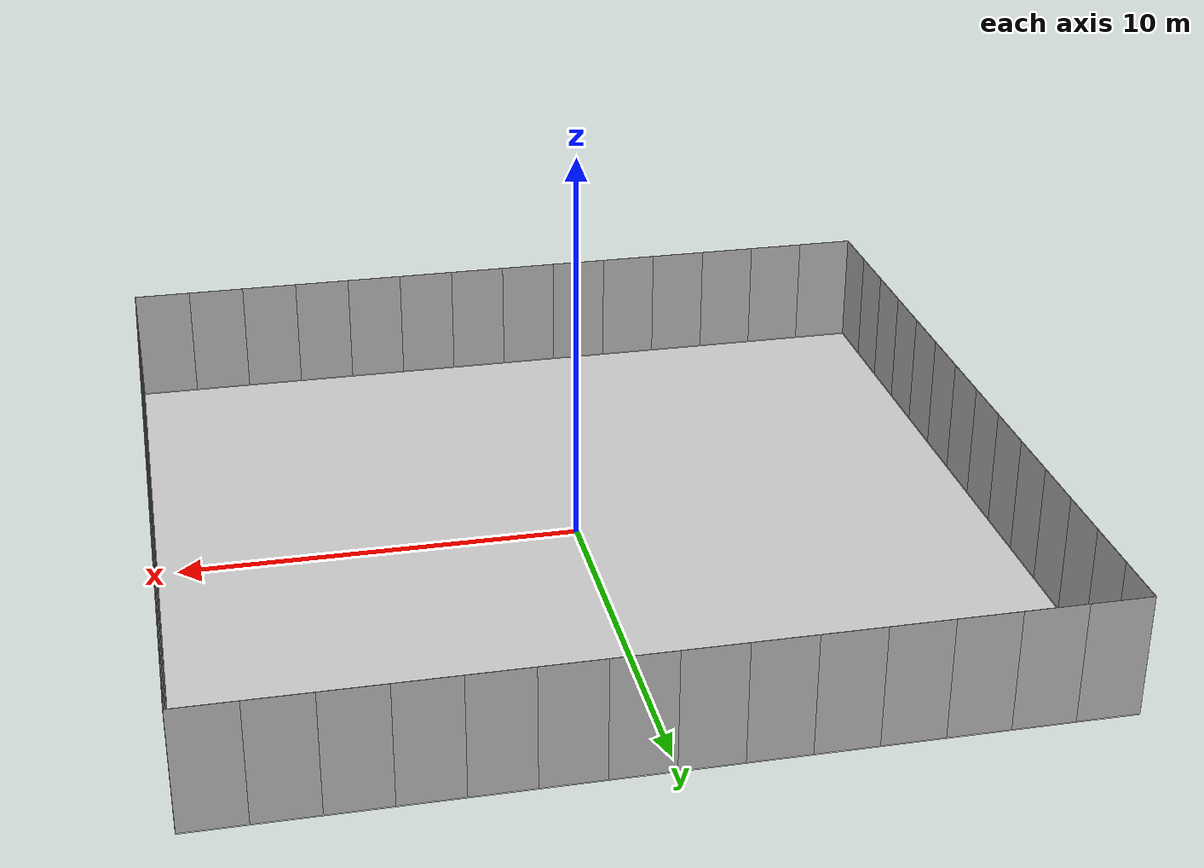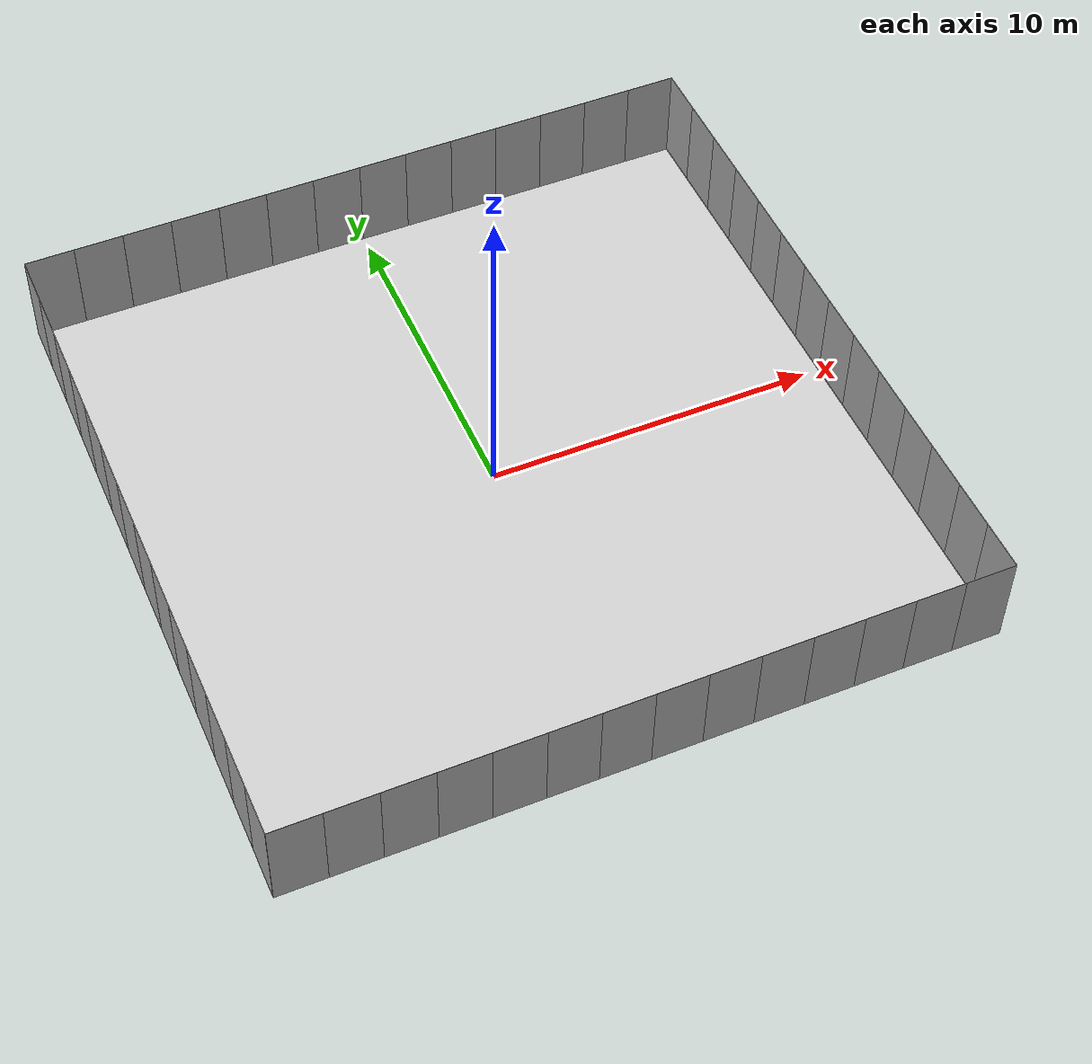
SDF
<sdf version="1.6">
 <world name="default">
  <physics type="ode">
   <real_time_update_rate>500.0</real_time_update_rate>
   <max_step_size>0.002</max_step_size>
   <real_time_factor>1</real_time_factor>
   <ode>
    <solver>
     <type>quick</type>
     <iters>300</iters>
     <precon_iters>0</precon_iters>
     <sor>1.400000</sor>
     <use_dynamic_moi_rescaling>1</use_dynamic_moi_rescaling>
    </solver>
    <constraints>
     <cfm>0.000000</cfm>
     <erp>0.800000</erp>
     <contact_max_correcting_vel>2000.000000</contact_max_correcting_vel>
     <contact_surface_layer>0.01000</contact_surface_layer>
    </constraints>
   </ode>
  </physics>
  <scene>
   <ambient>0.8 0.8 0.8 1.0</ambient>
   <background>0.66 0.77 0.84 1.0</background>
   <grid>0</grid>
   <origin_visual>0</origin_visual>
  </scene>
  <light name="directional_light" type="directional">
   <pose>0.0 0.0 -100.0 0 0 0</pose>
   <diffuse>0.5 0.5 0.5 1</diffuse>
   <specular>0.1 0.1 0.1 1</specular>
   <direction>0.1 0.1 -0.9</direction>
   <attenuation>
    <range>20</range>
    <constant>0.5</constant>
    <linear>0.01</linear>
    <quadratic>0.001</quadratic>
   </attenuation>
   <cast_shadows>0</cast_shadows>
  </light>
  <model name="floor">
   <static>true</static>
   <link name="link">
    <visual name="visual">
     <geometry><plane><normal>0 0 1</normal><size>21 21</size></plane></geometry>
     <material>
      <script>
       <uri>file://media/materials/scripts/</uri>
       <uri>file://media/materials/textures/</uri>
       <name>ServiceSim/Hallway</name>
      </script>
     </material>
    </visual>
    <collision name="collision">
     <geometry><plane><normal>0 0 1</normal><size>21 21</size></plane></geometry>
     <surface><friction><ode><mu>1</mu><mu2>1</mu2></ode></friction></surface>
    </collision>
   </link>
  </model>
  <model name="walls">
   <static>true</static>
   <link name="link">
    <visual name="visual_1">
     <pose>9.75
          -10.5
          1.5
          0.0
          0.0
          0</pose>
     <geometry><box><size>1.5
              0.01
              3.0</size></box></geometry>
     <material>
      <script>
       <uri>file://media/materials/scripts/</uri>
       <uri>file://media/materials/textures/</uri>
       <name>ServiceSim/PlainWall</name>
      </script>
     </material>
    </visual>
    <collision name="collision_1">
     <pose>9.75
          -10.5
          1.5
          0.0
          0.0
          0</pose>
     <geometry><box><size>1.5
              0.01
              3.0</size></box></geometry>
    </collision>
    <visual name="visual_1_1">
     <pose>8.25
          -10.5
          1.5
          0.0
          0.0
          0</pose>
     <geometry><box><size>1.5
              0.01
              3.0</size></box></geometry>
     <material>
      <script>
       <uri>file://media/materials/scripts/</uri>
       <uri>file://media/materials/textures/</uri>
       <name>ServiceSim/PlainWall</name>
      </script>
     </material>
    </visual>
    <collision name="collision_1_1">
     <pose>8.25
          -10.5
          1.5
          0.0
          0.0
          0</pose>
     <geometry><box><size>1.5
              0.01
              3.0</size></box></geometry>
    </collision>
    <visual name="visual_1_2">
     <pose>6.75
          -10.5
          1.5
          0.0
          0.0
          0</pose>
     <geometry><box><size>1.5
              0.01
              3.0</size></box></geometry>
     <material>
      <script>
       <uri>file://media/materials/scripts/</uri>
       <uri>file://media/materials/textures/</uri>
       <name>ServiceSim/PlainWall</name>
      </script>
     </material>
    </visual>
    <collision name="collision_1_2">
     <pose>6.75
          -10.5
          1.5
          0.0
          0.0
          0</pose>
     <geometry><box><size>1.5
              0.01
              3.0</size></box></geometry>
    </collision>
    <visual name="visual_1_3">
     <pose>5.25
          -10.5
          1.5
          0.0
          0.0
          0</pose>
     <geometry><box><size>1.5
              0.01
              3.0</size></box></geometry>
     <material>
      <script>
       <uri>file://media/materials/scripts/</uri>
       <uri>file://media/materials/textures/</uri>
       <name>ServiceSim/PlainWall</name>
      </script>
     </material>
    </visual>
    <collision name="collision_1_3">
     <pose>5.25
          -10.5
          1.5
          0.0
          0.0
          0</pose>
     <geometry><box><size>1.5
              0.01
              3.0</size></box></geometry>
    </collision>
    <visual name="visual_1_4">
     <pose>3.75
          -10.5
          1.5
          0.0
          0.0
          0</pose>
     <geometry><box><size>1.5
              0.01
              3.0</size></box></geometry>
     <material>
      <script>
       <uri>file://media/materials/scripts/</uri>
       <uri>file://media/materials/textures/</uri>
       <name>ServiceSim/PlainWall</name>
      </script>
     </material>
    </visual>
    <collision name="collision_1_4">
     <pose>3.75
          -10.5
          1.5
          0.0
          0.0
          0</pose>
     <geometry><box><size>1.5
              0.01
              3.0</size></box></geometry>
    </collision>
    <visual name="visual_1_5">
     <pose>2.25
          -10.5
          1.5
          0.0
          0.0
          0</pose>
     <geometry><box><size>1.5
              0.01
              3.0</size></box></geometry>
     <material>
      <script>
       <uri>file://media/materials/scripts/</uri>
       <uri>file://media/materials/textures/</uri>
       <name>ServiceSim/PlainWall</name>
      </script>
     </material>
    </visual>
    <collision name="collision_1_5">
     <pose>2.25
          -10.5
          1.5
          0.0
          0.0
          0</pose>
     <geometry><box><size>1.5
              0.01
              3.0</size></box></geometry>
    </collision>
    <visual name="visual_1_6">
     <pose>0.75
          -10.5
          1.5
          0.0
          0.0
          0</pose>
     <geometry><box><size>1.5
              0.01
              3.0</size></box></geometry>
     <material>
      <script>
       <uri>file://media/materials/scripts/</uri>
       <uri>file://media/materials/textures/</uri>
       <name>ServiceSim/PlainWall</name>
      </script>
     </material>
    </visual>
    <collision name="collision_1_6">
     <pose>0.75
          -10.5
          1.5
          0.0
          0.0
          0</pose>
     <geometry><box><size>1.5
              0.01
              3.0</size></box></geometry>
    </collision>
    <visual name="visual_1_7">
     <pose>-0.75
          -10.5
          1.5
          0.0
          0.0
          0</pose>
     <geometry><box><size>1.5
              0.01
              3.0</size></box></geometry>
     <material>
      <script>
       <uri>file://media/materials/scripts/</uri>
       <uri>file://media/materials/textures/</uri>
       <name>ServiceSim/PlainWall</name>
      </script>
     </material>
    </visual>
    <collision name="collision_1_7">
     <pose>-0.75
          -10.5
          1.5
          0.0
          0.0
          0</pose>
     <geometry><box><size>1.5
              0.01
              3.0</size></box></geometry>
    </collision>
    <visual name="visual_1_8">
     <pose>-2.25
          -10.5
          1.5
          0.0
          0.0
          0</pose>
     <geometry><box><size>1.5
              0.01
              3.0</size></box></geometry>
     <material>
      <script>
       <uri>file://media/materials/scripts/</uri>
       <uri>file://media/materials/textures/</uri>
       <name>ServiceSim/PlainWall</name>
      </script>
     </material>
    </visual>
    <collision name="collision_1_8">
     <pose>-2.25
          -10.5
          1.5
          0.0
          0.0
          0</pose>
     <geometry><box><size>1.5
              0.01
              3.0</size></box></geometry>
    </collision>
    <visual name="visual_1_9">
     <pose>-3.75
          -10.5
          1.5
          0.0
          0.0
          0</pose>
     <geometry><box><size>1.5
              0.01
              3.0</size></box></geometry>
     <material>
      <script>
       <uri>file://media/materials/scripts/</uri>
       <uri>file://media/materials/textures/</uri>
       <name>ServiceSim/PlainWall</name>
      </script>
     </material>
    </visual>
    <collision name="collision_1_9">
     <pose>-3.75
          -10.5
          1.5
          0.0
          0.0
          0</pose>
     <geometry><box><size>1.5
              0.01
              3.0</size></box></geometry>
    </collision>
    <visual name="visual_1_10">
     <pose>-5.25
          -10.5
          1.5
          0.0
          0.0
          0</pose>
     <geometry><box><size>1.5
              0.01
              3.0</size></box></geometry>
     <material>
      <script>
       <uri>file://media/materials/scripts/</uri>
       <uri>file://media/materials/textures/</uri>
       <name>ServiceSim/PlainWall</name>
      </script>
     </material>
    </visual>
    <collision name="collision_1_10">
     <pose>-5.25
          -10.5
          1.5
          0.0
          0.0
          0</pose>
     <geometry><box><size>1.5
              0.01
              3.0</size></box></geometry>
    </collision>
    <visual name="visual_1_11">
     <pose>-6.75
          -10.5
          1.5
          0.0
          0.0
          0</pose>
     <geometry><box><size>1.5
              0.01
              3.0</size></box></geometry>
     <material>
      <script>
       <uri>file://media/materials/scripts/</uri>
       <uri>file://media/materials/textures/</uri>
       <name>ServiceSim/PlainWall</name>
      </script>
     </material>
    </visual>
    <collision name="collision_1_11">
     <pose>-6.75
          -10.5
          1.5
          0.0
          0.0
          0</pose>
     <geometry><box><size>1.5
              0.01
              3.0</size></box></geometry>
    </collision>
    <visual name="visual_1_12">
     <pose>-8.25
          -10.5
          1.5
          0.0
          0.0
          0</pose>
     <geometry><box><size>1.5
              0.01
              3.0</size></box></geometry>
     <material>
      <script>
       <uri>file://media/materials/scripts/</uri>
       <uri>file://media/materials/textures/</uri>
       <name>ServiceSim/PlainWall</name>
      </script>
     </material>
    </visual>
    <collision name="collision_1_12">
     <pose>-8.25
          -10.5
          1.5
          0.0
          0.0
          0</pose>
     <geometry><box><size>1.5
              0.01
              3.0</size></box></geometry>
    </collision>
    <visual name="visual_1_13">
     <pose>-9.75
          -10.5
          1.5
          0.0
          0.0
          0</pose>
     <geometry><box><size>1.5
              0.01
              3.0</size></box></geometry>
     <material>
      <script>
       <uri>file://media/materials/scripts/</uri>
       <uri>file://media/materials/textures/</uri>
       <name>ServiceSim/PlainWall</name>
      </script>
     </material>
    </visual>
    <collision name="collision_1_13">
     <pose>-9.75
          -10.5
          1.5
          0.0
          0.0
          0</pose>
     <geometry><box><size>1.5
              0.01
              3.0</size></box></geometry>
    </collision>
    <visual name="visual_2">
     <pose>10.5
          -9.75
          1.5
          0.0
          0.0
          1.5707963267948966</pose>
     <geometry><box><size>1.5
              0.01
              3.0</size></box></geometry>
     <material>
      <script>
       <uri>file://media/materials/scripts/</uri>
       <uri>file://media/materials/textures/</uri>
       <name>ServiceSim/PlainWall</name>
      </script>
     </material>
    </visual>
    <collision name="collision_2">
     <pose>10.5
          -9.75
          1.5
          0.0
          0.0
          1.5707963267948966</pose>
     <geometry><box><size>1.5
              0.01
              3.0</size></box></geometry>
    </collision>
    <visual name="visual_2_1">
     <pose>10.5
          -8.25
          1.5
          0.0
          0.0
          1.5707963267948966</pose>
     <geometry><box><size>1.5
              0.01
              3.0</size></box></geometry>
     <material>
      <script>
       <uri>file://media/materials/scripts/</uri>
       <uri>file://media/materials/textures/</uri>
       <name>ServiceSim/PlainWall</name>
      </script>
     </material>
    </visual>
    <collision name="collision_2_1">
     <pose>10.5
          -8.25
          1.5
          0.0
          0.0
          1.5707963267948966</pose>
     <geometry><box><size>1.5
              0.01
              3.0</size></box></geometry>
    </collision>
    <visual name="visual_2_2">
     <pose>10.5
          -6.75
          1.5
          0.0
          0.0
          1.5707963267948966</pose>
     <geometry><box><size>1.5
              0.01
              3.0</size></box></geometry>
     <material>
      <script>
       <uri>file://media/materials/scripts/</uri>
       <uri>file://media/materials/textures/</uri>
       <name>ServiceSim/PlainWall</name>
      </script>
     </material>
    </visual>
    <collision name="collision_2_2">
     <pose>10.5
          -6.75
          1.5
          0.0
          0.0
          1.5707963267948966</pose>
     <geometry><box><size>1.5
              0.01
              3.0</size></box></geometry>
    </collision>
    <visual name="visual_2_3">
     <pose>10.5
          -5.25
          1.5
          0.0
          0.0
          1.5707963267948966</pose>
     <geometry><box><size>1.5
              0.01
              3.0</size></box></geometry>
     <material>
      <script>
       <uri>file://media/materials/scripts/</uri>
       <uri>file://media/materials/textures/</uri>
       <name>ServiceSim/PlainWall</name>
      </script>
     </material>
    </visual>
    <collision name="collision_2_3">
     <pose>10.5
          -5.25
          1.5
          0.0
          0.0
          1.5707963267948966</pose>
     <geometry><box><size>1.5
              0.01
              3.0</size></box></geometry>
    </collision>
    <visual name="visual_2_4">
     <pose>10.5
          -3.75
          1.5
          0.0
          0.0
          1.5707963267948966</pose>
     <geometry><box><size>1.5
              0.01
              3.0</size></box></geometry>
     <material>
      <script>
       <uri>file://media/materials/scripts/</uri>
       <uri>file://media/materials/textures/</uri>
       <name>ServiceSim/PlainWall</name>
      </script>
     </material>
    </visual>
    <collision name="collision_2_4">
     <pose>10.5
          -3.75
          1.5
          0.0
          0.0
          1.5707963267948966</pose>
     <geometry><box><size>1.5
              0.01
              3.0</size></box></geometry>
    </collision>
    <visual name="visual_2_5">
     <pose>10.5
          -2.25
          1.5
          0.0
          0.0
          1.5707963267948966</pose>
     <geometry><box><size>1.5
              0.01
              3.0</size></box></geometry>
     <material>
      <script>
       <uri>file://media/materials/scripts/</uri>
       <uri>file://media/materials/textures/</uri>
       <name>ServiceSim/PlainWall</name>
      </script>
     </material>
    </visual>
    <collision name="collision_2_5">
     <pose>10.5
          -2.25
          1.5
          0.0
          0.0
          1.5707963267948966</pose>
     <geometry><box><size>1.5
              0.01
              3.0</size></box></geometry>
    </collision>
    <visual name="visual_2_6">
     <pose>10.5
          -0.75
          1.5
          0.0
          0.0
          1.5707963267948966</pose>
     <geometry><box><size>1.5
              0.01
              3.0</size></box></geometry>
     <material>
      <script>
       <uri>file://media/materials/scripts/</uri>
       <uri>file://media/materials/textures/</uri>
       <name>ServiceSim/PlainWall</name>
      </script>
     </material>
    </visual>
    <collision name="collision_2_6">
     <pose>10.5
          -0.75
          1.5
          0.0
          0.0
          1.5707963267948966</pose>
     <geometry><box><size>1.5
              0.01
              3.0</size></box></geometry>
    </collision>
    <visual name="visual_2_7">
     <pose>10.5
          0.75
          1.5
          0.0
          0.0
          1.5707963267948966</pose>
     <geometry><box><size>1.5
              0.01
              3.0</size></box></geometry>
     <material>
      <script>
       <uri>file://media/materials/scripts/</uri>
       <uri>file://media/materials/textures/</uri>
       <name>ServiceSim/PlainWall</name>
      </script>
     </material>
    </visual>
    <collision name="collision_2_7">
     <pose>10.5
          0.75
          1.5
          0.0
          0.0
          1.5707963267948966</pose>
     <geometry><box><size>1.5
              0.01
              3.0</size></box></geometry>
    </collision>
    <visual name="visual_2_8">
     <pose>10.5
          2.25
          1.5
          0.0
          0.0
          1.5707963267948966</pose>
     <geometry><box><size>1.5
              0.01
              3.0</size></box></geometry>
     <material>
      <script>
       <uri>file://media/materials/scripts/</uri>
       <uri>file://media/materials/textures/</uri>
       <name>ServiceSim/PlainWall</name>
      </script>
     </material>
    </visual>
    <collision name="collision_2_8">
     <pose>10.5
          2.25
          1.5
          0.0
          0.0
          1.5707963267948966</pose>
     <geometry><box><size>1.5
              0.01
              3.0</size></box></geometry>
    </collision>
    <visual name="visual_2_9">
     <pose>10.5
          3.75
          1.5
          0.0
          0.0
          1.5707963267948966</pose>
     <geometry><box><size>1.5
              0.01
              3.0</size></box></geometry>
     <material>
      <script>
       <uri>file://media/materials/scripts/</uri>
       <uri>file://media/materials/textures/</uri>
       <name>ServiceSim/PlainWall</name>
      </script>
     </material>
    </visual>
    <collision name="collision_2_9">
     <pose>10.5
          3.75
          1.5
          0.0
          0.0
          1.5707963267948966</pose>
     <geometry><box><size>1.5
              0.01
              3.0</size></box></geometry>
    </collision>
    <visual name="visual_2_10">
     <pose>10.5
          5.25
          1.5
          0.0
          0.0
          1.5707963267948966</pose>
     <geometry><box><size>1.5
              0.01
              3.0</size></box></geometry>
     <material>
      <script>
       <uri>file://media/materials/scripts/</uri>
       <uri>file://media/materials/textures/</uri>
       <name>ServiceSim/PlainWall</name>
      </script>
     </material>
    </visual>
    <collision name="collision_2_10">
     <pose>10.5
          5.25
          1.5
          0.0
          0.0
          1.5707963267948966</pose>
     <geometry><box><size>1.5
              0.01
              3.0</size></box></geometry>
    </collision>
    <visual name="visual_2_11">
     <pose>10.5
          6.75
          1.5
          0.0
          0.0
          1.5707963267948966</pose>
     <geometry><box><size>1.5
              0.01
              3.0</size></box></geometry>
     <material>
      <script>
       <uri>file://media/materials/scripts/</uri>
       <uri>file://media/materials/textures/</uri>
       <name>ServiceSim/PlainWall</name>
      </script>
     </material>
    </visual>
    <collision name="collision_2_11">
     <pose>10.5
          6.75
          1.5
          0.0
          0.0
          1.5707963267948966</pose>
     <geometry><box><size>1.5
              0.01
              3.0</size></box></geometry>
    </collision>
    <visual name="visual_2_12">
     <pose>10.5
          8.25
          1.5
          0.0
          0.0
          1.5707963267948966</pose>
     <geometry><box><size>1.5
              0.01
              3.0</size></box></geometry>
     <material>
      <script>
       <uri>file://media/materials/scripts/</uri>
       <uri>file://media/materials/textures/</uri>
       <name>ServiceSim/PlainWall</name>
      </script>
     </material>
    </visual>
    <collision name="collision_2_12">
     <pose>10.5
          8.25
          1.5
          0.0
          0.0
          1.5707963267948966</pose>
     <geometry><box><size>1.5
              0.01
              3.0</size></box></geometry>
    </collision>
    <visual name="visual_2_13">
     <pose>10.5
          9.75
          1.5
          0.0
          0.0
          1.5707963267948966</pose>
     <geometry><box><size>1.5
              0.01
              3.0</size></box></geometry>
     <material>
      <script>
       <uri>file://media/materials/scripts/</uri>
       <uri>file://media/materials/textures/</uri>
       <name>ServiceSim/PlainWall</name>
      </script>
     </material>
    </visual>
    <collision name="collision_2_13">
     <pose>10.5
          9.75
          1.5
          0.0
          0.0
          1.5707963267948966</pose>
     <geometry><box><size>1.5
              0.01
              3.0</size></box></geometry>
    </collision>
    <visual name="visual_3">
     <pose>9.75
          10.5
          1.5
          0.0
          0.0
          0</pose>
     <geometry><box><size>1.5
              0.01
              3.0</size></box></geometry>
     <material>
      <script>
       <uri>file://media/materials/scripts/</uri>
       <uri>file://media/materials/textures/</uri>
       <name>ServiceSim/PlainWall</name>
      </script>
     </material>
    </visual>
    <collision name="collision_3">
     <pose>9.75
          10.5
          1.5
          0.0
          0.0
          0</pose>
     <geometry><box><size>1.5
              0.01
              3.0</size></box></geometry>
    </collision>
    <visual name="visual_3_1">
     <pose>8.25
          10.5
          1.5
          0.0
          0.0
          0</pose>
     <geometry><box><size>1.5
              0.01
              3.0</size></box></geometry>
     <material>
      <script>
       <uri>file://media/materials/scripts/</uri>
       <uri>file://media/materials/textures/</uri>
       <name>ServiceSim/PlainWall</name>
      </script>
     </material>
    </visual>
    <collision name="collision_3_1">
     <pose>8.25
          10.5
          1.5
          0.0
          0.0
          0</pose>
     <geometry><box><size>1.5
              0.01
              3.0</size></box></geometry>
    </collision>
    <visual name="visual_3_2">
     <pose>6.75
          10.5
          1.5
          0.0
          0.0
          0</pose>
     <geometry><box><size>1.5
              0.01
              3.0</size></box></geometry>
     <material>
      <script>
       <uri>file://media/materials/scripts/</uri>
       <uri>file://media/materials/textures/</uri>
       <name>ServiceSim/PlainWall</name>
      </script>
     </material>
    </visual>
    <collision name="collision_3_2">
     <pose>6.75
          10.5
          1.5
          0.0
          0.0
          0</pose>
     <geometry><box><size>1.5
              0.01
              3.0</size></box></geometry>
    </collision>
    <visual name="visual_3_3">
     <pose>5.25
          10.5
          1.5
          0.0
          0.0
          0</pose>
     <geometry><box><size>1.5
              0.01
              3.0</size></box></geometry>
     <material>
      <script>
       <uri>file://media/materials/scripts/</uri>
       <uri>file://media/materials/textures/</uri>
       <name>ServiceSim/PlainWall</name>
      </script>
     </material>
    </visual>
    <collision name="collision_3_3">
     <pose>5.25
          10.5
          1.5
          0.0
          0.0
          0</pose>
     <geometry><box><size>1.5
              0.01
              3.0</size></box></geometry>
    </collision>
    <visual name="visual_3_4">
     <pose>3.75
          10.5
          1.5
          0.0
          0.0
          0</pose>
     <geometry><box><size>1.5
              0.01
              3.0</size></box></geometry>
     <material>
      <script>
       <uri>file://media/materials/scripts/</uri>
       <uri>file://media/materials/textures/</uri>
       <name>ServiceSim/PlainWall</name>
      </script>
     </material>
    </visual>
    <collision name="collision_3_4">
     <pose>3.75
          10.5
          1.5
          0.0
          0.0
          0</pose>
     <geometry><box><size>1.5
              0.01
              3.0</size></box></geometry>
    </collision>
    <visual name="visual_3_5">
     <pose>2.25
          10.5
          1.5
          0.0
          0.0
          0</pose>
     <geometry><box><size>1.5
              0.01
              3.0</size></box></geometry>
     <material>
      <script>
       <uri>file://media/materials/scripts/</uri>
       <uri>file://media/materials/textures/</uri>
       <name>ServiceSim/PlainWall</name>
      </script>
     </material>
    </visual>
    <collision name="collision_3_5">
     <pose>2.25
          10.5
          1.5
          0.0
          0.0
          0</pose>
     <geometry><box><size>1.5
              0.01
              3.0</size></box></geometry>
    </collision>
    <visual name="visual_3_6">
     <pose>0.75
          10.5
          1.5
          0.0
          0.0
          0</pose>
     <geometry><box><size>1.5
              0.01
              3.0</size></box></geometry>
     <material>
      <script>
       <uri>file://media/materials/scripts/</uri>
       <uri>file://media/materials/textures/</uri>
       <name>ServiceSim/PlainWall</name>
      </script>
     </material>
    </visual>
    <collision name="collision_3_6">
     <pose>0.75
          10.5
          1.5
          0.0
          0.0
          0</pose>
     <geometry><box><size>1.5
              0.01
              3.0</size></box></geometry>
    </collision>
    <visual name="visual_3_7">
     <pose>-0.75
          10.5
          1.5
          0.0
          0.0
          0</pose>
     <geometry><box><size>1.5
              0.01
              3.0</size></box></geometry>
     <material>
      <script>
       <uri>file://media/materials/scripts/</uri>
       <uri>file://media/materials/textures/</uri>
       <name>ServiceSim/PlainWall</name>
      </script>
     </material>
    </visual>
    <collision name="collision_3_7">
     <pose>-0.75
          10.5
          1.5
          0.0
          0.0
          0</pose>
     <geometry><box><size>1.5
              0.01
              3.0</size></box></geometry>
    </collision>
    <visual name="visual_3_8">
     <pose>-2.25
          10.5
          1.5
          0.0
          0.0
          0</pose>
     <geometry><box><size>1.5
              0.01
              3.0</size></box></geometry>
     <material>
      <script>
       <uri>file://media/materials/scripts/</uri>
       <uri>file://media/materials/textures/</uri>
       <name>ServiceSim/PlainWall</name>
      </script>
     </material>
    </visual>
    <collision name="collision_3_8">
     <pose>-2.25
          10.5
          1.5
          0.0
          0.0
          0</pose>
     <geometry><box><size>1.5
              0.01
              3.0</size></box></geometry>
    </collision>
    <visual name="visual_3_9">
     <pose>-3.75
          10.5
          1.5
          0.0
          0.0
          0</pose>
     <geometry><box><size>1.5
              0.01
              3.0</size></box></geometry>
     <material>
      <script>
       <uri>file://media/materials/scripts/</uri>
       <uri>file://media/materials/textures/</uri>
       <name>ServiceSim/PlainWall</name>
      </script>
     </material>
    </visual>
    <collision name="collision_3_9">
     <pose>-3.75
          10.5
          1.5
          0.0
          0.0
          0</pose>
     <geometry><box><size>1.5
              0.01
              3.0</size></box></geometry>
    </collision>
    <visual name="visual_3_10">
     <pose>-5.25
          10.5
          1.5
          0.0
          0.0
          0</pose>
     <geometry><box><size>1.5
              0.01
              3.0</size></box></geometry>
     <material>
      <script>
       <uri>file://media/materials/scripts/</uri>
       <uri>file://media/materials/textures/</uri>
       <name>ServiceSim/PlainWall</name>
      </script>
     </material>
    </visual>
    <collision name="collision_3_10">
     <pose>-5.25
          10.5
          1.5
          0.0
          0.0
          0</pose>
     <geometry><box><size>1.5
              0.01
              3.0</size></box></geometry>
    </collision>
    <visual name="visual_3_11">
     <pose>-6.75
          10.5
          1.5
          0.0
          0.0
          0</pose>
     <geometry><box><size>1.5
              0.01
              3.0</size></box></geometry>
     <material>
      <script>
       <uri>file://media/materials/scripts/</uri>
       <uri>file://media/materials/textures/</uri>
       <name>ServiceSim/PlainWall</name>
      </script>
     </material>
    </visual>
    <collision name="collision_3_11">
     <pose>-6.75
          10.5
          1.5
          0.0
          0.0
          0</pose>
     <geometry><box><size>1.5
              0.01
              3.0</size></box></geometry>
    </collision>
    <visual name="visual_3_12">
     <pose>-8.25
          10.5
          1.5
          0.0
          0.0
          0</pose>
     <geometry><box><size>1.5
              0.01
              3.0</size></box></geometry>
     <material>
      <script>
       <uri>file://media/materials/scripts/</uri>
       <uri>file://media/materials/textures/</uri>
       <name>ServiceSim/PlainWall</name>
      </script>
     </material>
    </visual>
    <collision name="collision_3_12">
     <pose>-8.25
          10.5
          1.5
          0.0
          0.0
          0</pose>
     <geometry><box><size>1.5
              0.01
              3.0</size></box></geometry>
    </collision>
    <visual name="visual_3_13">
     <pose>-9.75
          10.5
          1.5
          0.0
          0.0
          0</pose>
     <geometry><box><size>1.5
              0.01
              3.0</size></box></geometry>
     <material>
      <script>
       <uri>file://media/materials/scripts/</uri>
       <uri>file://media/materials/textures/</uri>
       <name>ServiceSim/PlainWall</name>
      </script>
     </material>
    </visual>
    <collision name="collision_3_13">
     <pose>-9.75
          10.5
          1.5
          0.0
          0.0
          0</pose>
     <geometry><box><size>1.5
              0.01
              3.0</size></box></geometry>
    </collision>
    <visual name="visual_4">
     <pose>-10.5
          9.75
          1.5
          0.0
          0.0
          1.5707963267948966</pose>
     <geometry><box><size>1.5
              0.01
              3.0</size></box></geometry>
     <material>
      <script>
       <uri>file://media/materials/scripts/</uri>
       <uri>file://media/materials/textures/</uri>
       <name>ServiceSim/PlainWall</name>
      </script>
     </material>
    </visual>
    <collision name="collision_4">
     <pose>-10.5
          9.75
          1.5
          0.0
          0.0
          1.5707963267948966</pose>
     <geometry><box><size>1.5
              0.01
              3.0</size></box></geometry>
    </collision>
    <visual name="visual_4_1">
     <pose>-10.5
          8.25
          1.5
          0.0
          0.0
          1.5707963267948966</pose>
     <geometry><box><size>1.5
              0.01
              3.0</size></box></geometry>
     <material>
      <script>
       <uri>file://media/materials/scripts/</uri>
       <uri>file://media/materials/textures/</uri>
       <name>ServiceSim/PlainWall</name>
      </script>
     </material>
    </visual>
    <collision name="collision_4_1">
     <pose>-10.5
          8.25
          1.5
          0.0
          0.0
          1.5707963267948966</pose>
     <geometry><box><size>1.5
              0.01
              3.0</size></box></geometry>
    </collision>
    <visual name="visual_4_2">
     <pose>-10.5
          6.75
          1.5
          0.0
          0.0
          1.5707963267948966</pose>
     <geometry><box><size>1.5
              0.01
              3.0</size></box></geometry>
     <material>
      <script>
       <uri>file://media/materials/scripts/</uri>
       <uri>file://media/materials/textures/</uri>
       <name>ServiceSim/PlainWall</name>
      </script>
     </material>
    </visual>
    <collision name="collision_4_2">
     <pose>-10.5
          6.75
          1.5
          0.0
          0.0
          1.5707963267948966</pose>
     <geometry><box><size>1.5
              0.01
              3.0</size></box></geometry>
    </collision>
    <visual name="visual_4_3">
     <pose>-10.5
          5.25
          1.5
          0.0
          0.0
          1.5707963267948966</pose>
     <geometry><box><size>1.5
              0.01
              3.0</size></box></geometry>
     <material>
      <script>
       <uri>file://media/materials/scripts/</uri>
       <uri>file://media/materials/textures/</uri>
       <name>ServiceSim/PlainWall</name>
      </script>
     </material>
    </visual>
    <collision name="collision_4_3">
     <pose>-10.5
          5.25
          1.5
          0.0
          0.0
          1.5707963267948966</pose>
     <geometry><box><size>1.5
              0.01
              3.0</size></box></geometry>
    </collision>
    <visual name="visual_4_4">
     <pose>-10.5
          3.75
          1.5
          0.0
          0.0
          1.5707963267948966</pose>
     <geometry><box><size>1.5
              0.01
              3.0</size></box></geometry>
     <material>
      <script>
       <uri>file://media/materials/scripts/</uri>
       <uri>file://media/materials/textures/</uri>
       <name>ServiceSim/PlainWall</name>
      </script>
     </material>
    </visual>
    <collision name="collision_4_4">
     <pose>-10.5
          3.75
          1.5
          0.0
          0.0
          1.5707963267948966</pose>
     <geometry><box><size>1.5
              0.01
              3.0</size></box></geometry>
    </collision>
    <visual name="visual_4_5">
     <pose>-10.5
          2.25
          1.5
          0.0
          0.0
          1.5707963267948966</pose>
     <geometry><box><size>1.5
              0.01
              3.0</size></box></geometry>
     <material>
      <script>
       <uri>file://media/materials/scripts/</uri>
       <uri>file://media/materials/textures/</uri>
       <name>ServiceSim/PlainWall</name>
      </script>
     </material>
    </visual>
    <collision name="collision_4_5">
     <pose>-10.5
          2.25
          1.5
          0.0
          0.0
          1.5707963267948966</pose>
     <geometry><box><size>1.5
              0.01
              3.0</size></box></geometry>
    </collision>
    <visual name="visual_4_6">
     <pose>-10.5
          0.75
          1.5
          0.0
          0.0
          1.5707963267948966</pose>
     <geometry><box><size>1.5
              0.01
              3.0</size></box></geometry>
     <material>
      <script>
       <uri>file://media/materials/scripts/</uri>
       <uri>file://media/materials/textures/</uri>
       <name>ServiceSim/PlainWall</name>
      </script>
     </material>
    </visual>
    <collision name="collision_4_6">
     <pose>-10.5
          0.75
          1.5
          0.0
          0.0
          1.5707963267948966</pose>
     <geometry><box><size>1.5
              0.01
              3.0</size></box></geometry>
    </collision>
    <visual name="visual_4_7">
     <pose>-10.5
          -0.75
          1.5
          0.0
          0.0
          1.5707963267948966</pose>
     <geometry><box><size>1.5
              0.01
              3.0</size></box></geometry>
     <material>
      <script>
       <uri>file://media/materials/scripts/</uri>
       <uri>file://media/materials/textures/</uri>
       <name>ServiceSim/PlainWall</name>
      </script>
     </material>
    </visual>
    <collision name="collision_4_7">
     <pose>-10.5
          -0.75
          1.5
          0.0
          0.0
          1.5707963267948966</pose>
     <geometry><box><size>1.5
              0.01
              3.0</size></box></geometry>
    </collision>
    <visual name="visual_4_8">
     <pose>-10.5
          -2.25
          1.5
          0.0
          0.0
          1.5707963267948966</pose>
     <geometry><box><size>1.5
              0.01
              3.0</size></box></geometry>
     <material>
      <script>
       <uri>file://media/materials/scripts/</uri>
       <uri>file://media/materials/textures/</uri>
       <name>ServiceSim/PlainWall</name>
      </script>
     </material>
    </visual>
    <collision name="collision_4_8">
     <pose>-10.5
          -2.25
          1.5
          0.0
          0.0
          1.5707963267948966</pose>
     <geometry><box><size>1.5
              0.01
              3.0</size></box></geometry>
    </collision>
    <visual name="visual_4_9">
     <pose>-10.5
          -3.75
          1.5
          0.0
          0.0
          1.5707963267948966</pose>
     <geometry><box><size>1.5
              0.01
              3.0</size></box></geometry>
     <material>
      <script>
       <uri>file://media/materials/scripts/</uri>
       <uri>file://media/materials/textures/</uri>
       <name>ServiceSim/PlainWall</name>
      </script>
     </material>
    </visual>
    <collision name="collision_4_9">
     <pose>-10.5
          -3.75
          1.5
          0.0
          0.0
          1.5707963267948966</pose>
     <geometry><box><size>1.5
              0.01
              3.0</size></box></geometry>
    </collision>
    <visual name="visual_4_10">
     <pose>-10.5
          -5.25
          1.5
          0.0
          0.0
          1.5707963267948966</pose>
     <geometry><box><size>1.5
              0.01
              3.0</size></box></geometry>
     <material>
      <script>
       <uri>file://media/materials/scripts/</uri>
       <uri>file://media/materials/textures/</uri>
       <name>ServiceSim/PlainWall</name>
      </script>
     </material>
    </visual>
    <collision name="collision_4_10">
     <pose>-10.5
          -5.25
          1.5
          0.0
          0.0
          1.5707963267948966</pose>
     <geometry><box><size>1.5
              0.01
              3.0</size></box></geometry>
    </collision>
    <visual name="visual_4_11">
     <pose>-10.5
          -6.75
          1.5
          0.0
          0.0
          1.5707963267948966</pose>
     <geometry><box><size>1.5
              0.01
              3.0</size></box></geometry>
     <material>
      <script>
       <uri>file://media/materials/scripts/</uri>
       <uri>file://media/materials/textures/</uri>
       <name>ServiceSim/PlainWall</name>
      </script>
     </material>
    </visual>
    <collision name="collision_4_11">
     <pose>-10.5
          -6.75
          1.5
          0.0
          0.0
          1.5707963267948966</pose>
     <geometry><box><size>1.5
              0.01
              3.0</size></box></geometry>
    </collision>
    <visual name="visual_4_12">
     <pose>-10.5
          -8.25
          1.5
          0.0
          0.0
          1.5707963267948966</pose>
     <geometry><box><size>1.5
              0.01
              3.0</size></box></geometry>
     <material>
      <script>
       <uri>file://media/materials/scripts/</uri>
       <uri>file://media/materials/textures/</uri>
       <name>ServiceSim/PlainWall</name>
      </script>
     </material>
    </visual>
    <collision name="collision_4_12">
     <pose>-10.5
          -8.25
          1.5
          0.0
          0.0
          1.5707963267948966</pose>
     <geometry><box><size>1.5
              0.01
              3.0</size></box></geometry>
    </collision>
    <visual name="visual_4_13">
     <pose>-10.5
          -9.75
          1.5
          0.0
          0.0
          1.5707963267948966</pose>
     <geometry><box><size>1.5
              0.01
              3.0</size></box></geometry>
     <material>
      <script>
       <uri>file://media/materials/scripts/</uri>
       <uri>file://media/materials/textures/</uri>
       <name>ServiceSim/PlainWall</name>
      </script>
     </material>
    </visual>
    <collision name="collision_4_13">
     <pose>-10.5
          -9.75
          1.5
          0.0
          0.0
          1.5707963267948966</pose>
     <geometry><box><size>1.5
              0.01
              3.0</size></box></geometry>
    </collision>
   </link>
  </model>
 </world>
</sdf>
